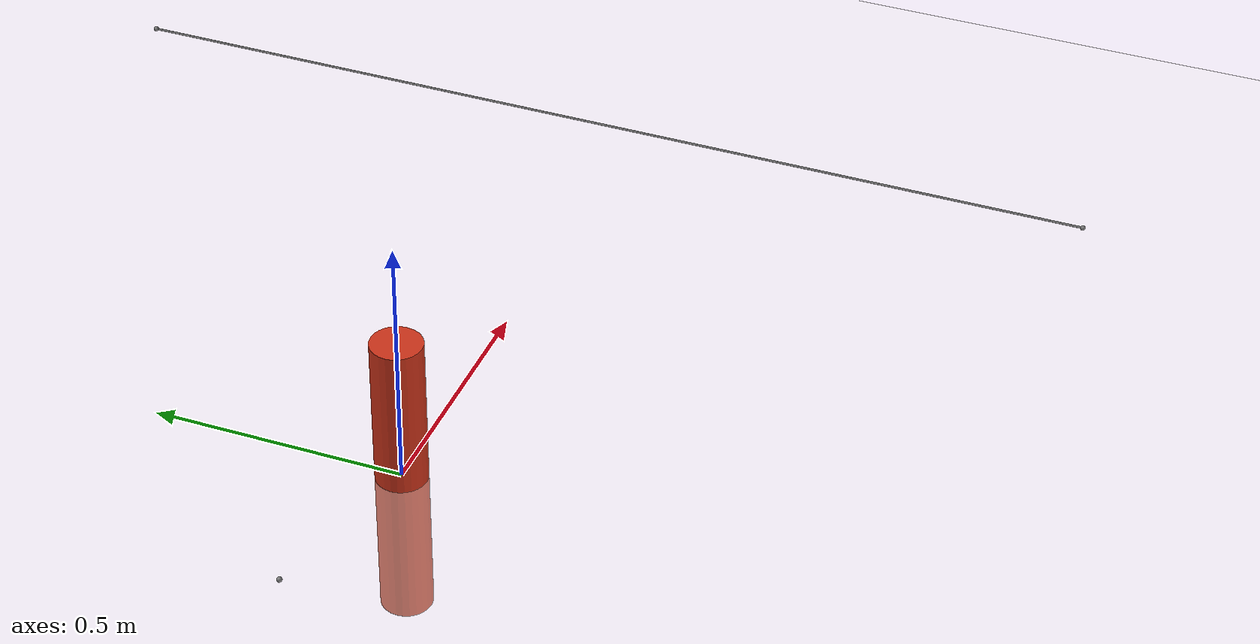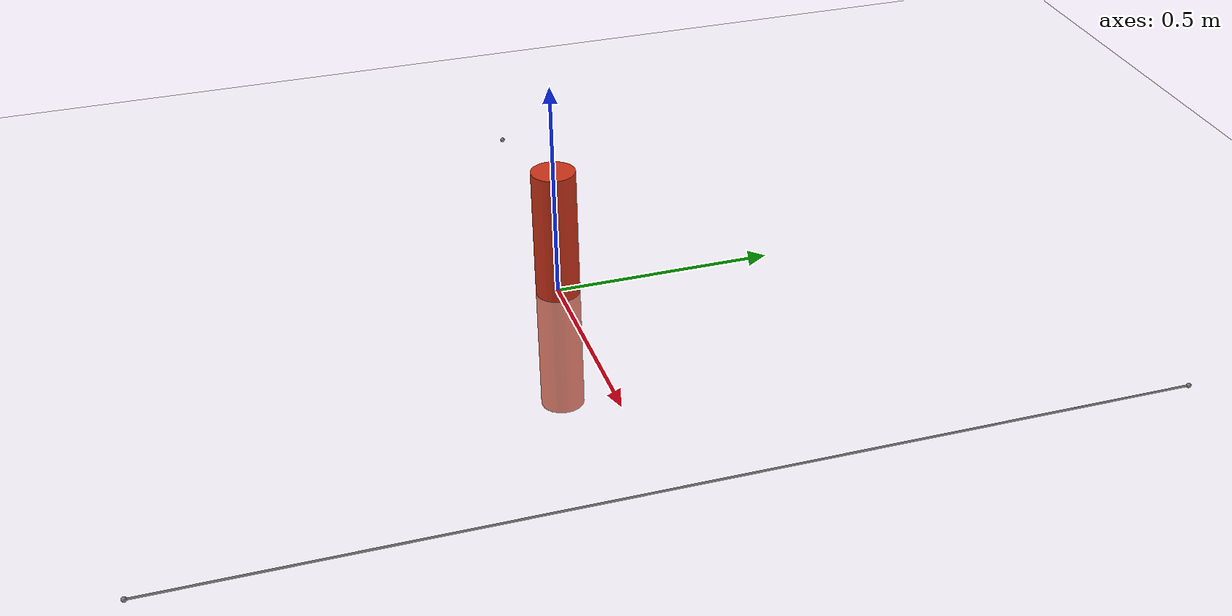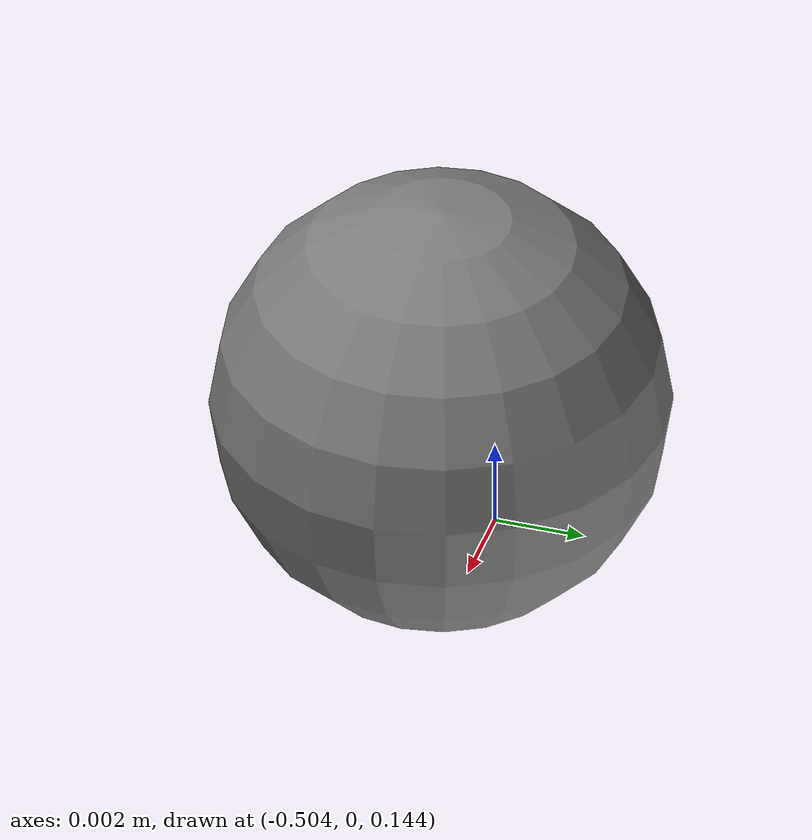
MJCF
<mujoco model="tendon">
    <option gravity="-9.81 0 0"/>
    <worldbody>
        <light diffuse=".5 .5 .5" pos="0 0 5" dir="0 0 -1"/>
        <geom type="plane" size="2 2 0.1" rgba="1 1 1 1"/>
        <site name="s1" pos="1 1 .15"/>
        <body name="pulley" pos="0 0 0">
            <freejoint/>
            <geom name="g" type="cylinder" size="0.05 0.3" rgba="0.8 0.2 0.1 1"/>
            <site name="side1" pos="-0.5 0 .15"/>
            <body>
                <site name="s2" pos="1 -1 .15"/>
            </body>
        </body>

    </worldbody>
    <tendon>
        <spatial name="tendon1" width=".002" damping="10" stiffness="100">
            <site site="s1"/>
            <geom geom="g" sidesite="side1"/>
            <site site="s2"/>
        </spatial>
    </tendon>
    <actuator>
        <motor name="tendon1" tendon="tendon1" ctrlrange="-200 200"/>
    </actuator>
</mujoco>
